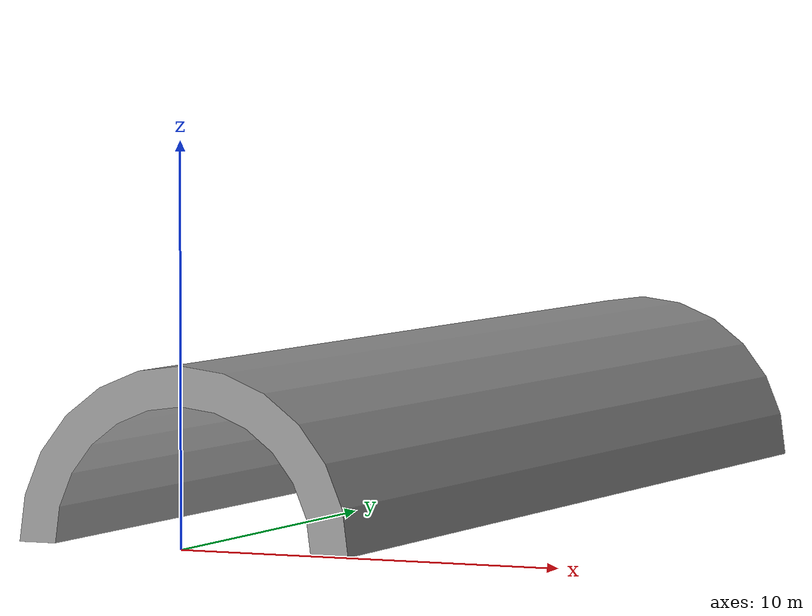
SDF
<?xml version="1.0"?>
<sdf version="1.5">
  <model name="track">
    <static>true</static>
    <link name="link">
      <collision name="collision">
        <geometry>
          <mesh>
            <uri>model://tunnel/mesh/tunnel.dae</uri>
            <scale>1.0 1.0 1.0</scale>
          </mesh>
        </geometry>
        <surface>
          <friction>
            <ode>
              <mu>100</mu>
              <mu2>50</mu2>
            </ode>
          </friction>
        </surface>
      </collision>
      <visual name="visual">
        <cast_shadows>false</cast_shadows>
        <geometry>
          <mesh>
            <uri>model://tunnel/mesh/tunnel.dae</uri>
            <scale>1.0 1.0 1.0</scale>
          </mesh>
        </geometry>
        <material>
          <script>
            <uri>file://media/materials/scripts/gazebo.material</uri>
            <name>Gazebo/Grey</name>
          </script>
        </material>
        <transparency>0</transparency>
        <cast_shadows>1</cast_shadows>
      </visual>
    </link>
  </model>
</sdf>
